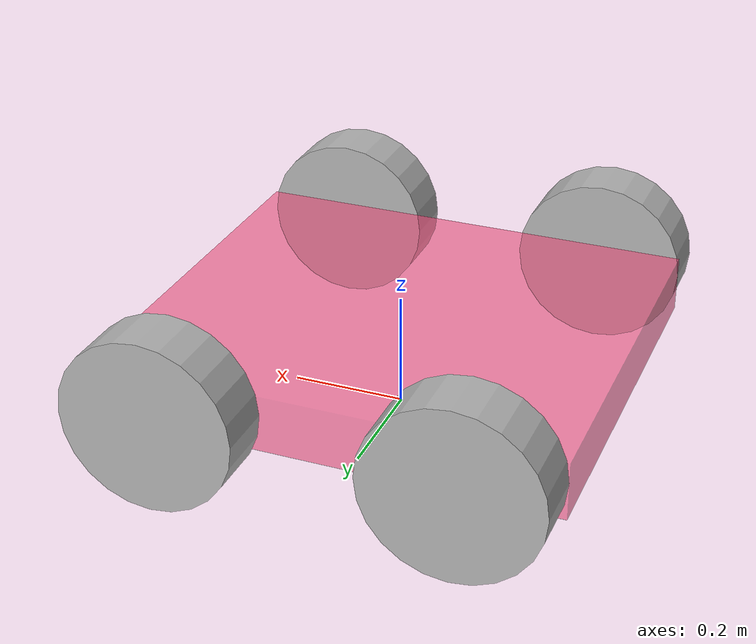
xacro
<?xml version="1.0"?>
<robot xmlns:xacro="http://www.ros.org/wiki/xacro" name="sample_bot">

<!-- An example of a simple robot with 4 wheels and a body -->

<xacro:property name="rear_r" value="rear_wheel_right"/>
<xacro:property name="rear_l" value="rear_wheel_left"/>

<link name="base_footprint"/>
<link name="base_link">
    <visual>
        <origin xyz="0.0 0.0 0" rpy="0.0 0.0 0.0"/>

        <geometry>
            <box size="0.8 0.7 0.1" />
        </geometry>

        <material name="black">
            <color rgba="1 0.3 0.5 0.6"/>
        </material>
    </visual>

</link>

<link name="front_wheel_left_link">
    <visual>
         <origin xyz="0.0 0.0 0.0" rpy="0.0 0.0 0.0"/>
        <geometry>
            <cylinder radius="0.15" length="0.1"/>
        </geometry>
        <material name="LightGrey">
            <color rgba="0.7 0.7 0.7 1.0"/>
        </material>
    </visual>
</link>

<link name="front_wheel_right_link">
    <visual>
         <origin xyz="0.0 0.0 0.0" rpy="0.0 0.0 0.0"/>
        <geometry>
            <cylinder radius="0.15" length="0.1"/>
        </geometry>
        <material name="LightGrey">
            <color rgba="0.7 0.7 0.7 1.0"/>
        </material>
    </visual>
</link>

<link name="rear_l_link">
    <visual>
         <origin xyz="0.0 0.0 0.0" rpy="0.0 0.0 0.0"/>
        <geometry>
            <cylinder radius="0.15" length="0.1"/>
        </geometry>
        <material name="LightGrey">
            <color rgba="0.7 0.7 0.7 1.0"/>
        </material>
    </visual>
</link>

<link name="rear_r_link">
    <visual>
         <origin xyz="0.0 0.0 0.0" rpy="0.0 0.0 0.0"/>
        <geometry>
            <cylinder radius="0.15" length="0.1"/>
        </geometry>
        <material name="LightGrey">
            <color rgba="0.7 0.7 0.7 1.0"/>
        </material>
    </visual>
</link>

<joint name="rear_r_joint" type="continuous">
    <parent link="base_footprint"/>
    <child link="rear_r_link"/>
    <origin xyz="-0.25 -0.4 0.15" rpy="1.57 0 0"/>
    <axis xyz="0 0 1"/>
</joint>

<joint name="rear_l_joint" type="continuous">
    <parent link="base_footprint"/>
    <child link="rear_l_link"/>
    <origin xyz="-0.25 0.4 0.15" rpy="1.57 0 0"/>
    <axis xyz="0 0 1"/>
</joint>

<joint name="front_wheel_right_joint" type="continuous">
    <parent link="base_footprint"/>
    <child link="front_wheel_right_link"/>
    <origin xyz="0.25 -0.4 0.15" rpy="1.57 0 0"/>
    <axis xyz="0 0 1"/>
</joint>

<joint name="front_wheel_left_joint" type="continuous">
    <parent link="base_footprint"/>
    <child link="front_wheel_left_link"/>
    <origin xyz="0.25 0.4 0.15" rpy="1.57 0 0"/>
    <axis xyz="0 0 1"/>
</joint>

<joint name="base_joint" type="fixed">
    <parent link="base_footprint"/>
    <child link="base_link"/>
    <origin xyz="0 0 0.135" rpy="0 0 0"/>
    <axis xyz="0 0 0"/>
</joint>

</robot>
